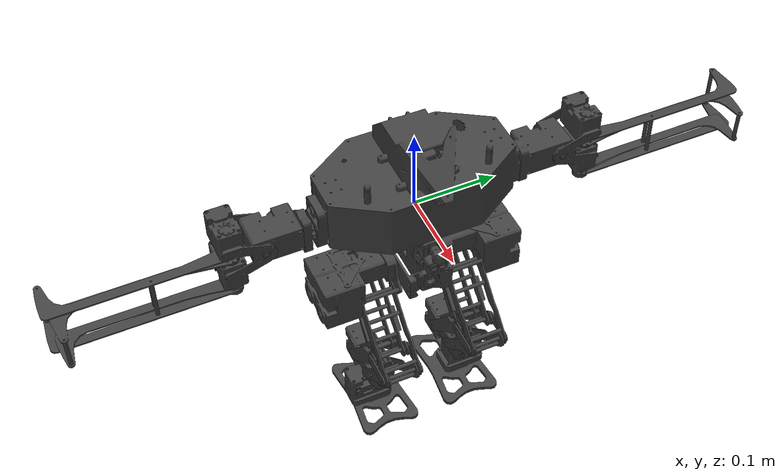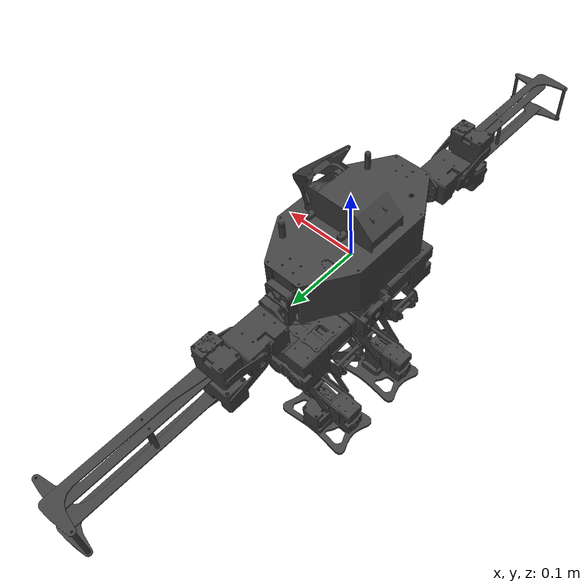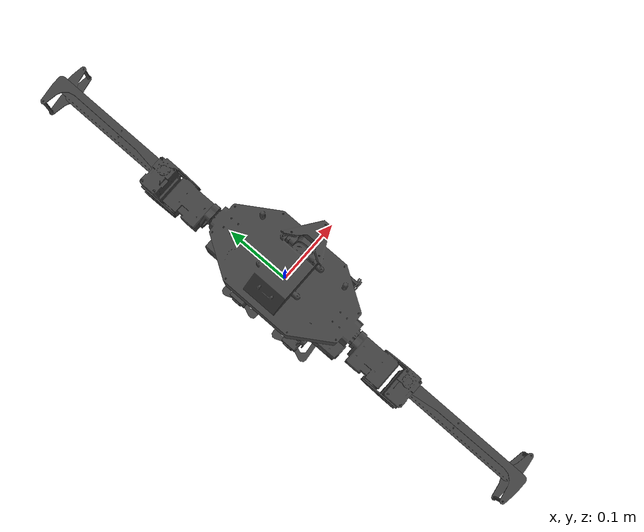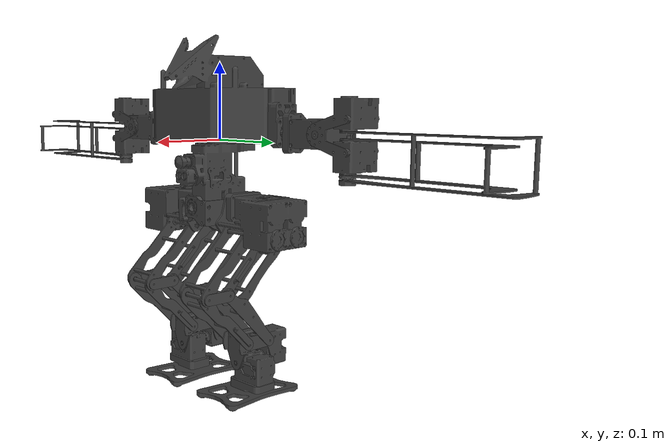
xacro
<?xml version="1.0"?>
<robot name="kuroko" xmlns:xacro="http://www.ros.org/wiki/xacro">

  <xacro:arg name="gazebo" default="false"/>
  <xacro:arg name="box_visual" default="false"/>
  <!-- Optional ros2_control controller parameters YAML for Gazebo Classic plugin -->
  <xacro:arg name="controller_yaml" default="$(find kuroko_description)/config/ros2_control/joint_trajectory_controller.yaml"/>
  <xacro:arg name="pid_yaml" default="$(find kuroko_description)/config/ros2_control/gazebo_pid_gains.yaml"/>

  <xacro:property name="XACRO_DIR" value="$(find kuroko_description)/xacro" />

  <xacro:unless value="$(arg gazebo)">
    <xacro:property name="MESH_DIR" value="package://kuroko_description/meshes" />
  </xacro:unless>
  <xacro:if value="$(arg gazebo)">
    <xacro:property name="MESH_DIR" value="$(find kuroko_description)/meshes" />
  </xacro:if>

  <xacro:include filename="${XACRO_DIR}/physics/materials.xacro"/>
  <xacro:include filename="${XACRO_DIR}/physics/box_physics.xacro"/>
  <xacro:include filename="${XACRO_DIR}/physics/gazebo_passive_joint.xacro"/>

  <xacro:include filename="${XACRO_DIR}/kuroko/parts/body.xacro"/>
  <xacro:include filename="${XACRO_DIR}/kuroko/gazebo/body.gazebo"/>

  <xacro:include filename="${XACRO_DIR}/kuroko/parts/arm_r.xacro"/>
  <xacro:include filename="${XACRO_DIR}/kuroko/gazebo/arm_r.gazebo"/>

  <xacro:include filename="${XACRO_DIR}/kuroko/parts/arm_l.xacro"/>
  <xacro:include filename="${XACRO_DIR}/kuroko/gazebo/arm_l.gazebo"/>

  <xacro:include filename="${XACRO_DIR}/kuroko/parts/leg_r.xacro"/>
  <xacro:include filename="${XACRO_DIR}/kuroko/gazebo/leg_r.gazebo"/>

  <xacro:include filename="${XACRO_DIR}/kuroko/parts/leg_l.xacro"/>
  <xacro:include filename="${XACRO_DIR}/kuroko/gazebo/leg_l.gazebo"/>

  <xacro:include filename="${XACRO_DIR}/sensors/range/tfluna.xacro"/>
  <xacro:include filename="${XACRO_DIR}/sensors/imu/imu_n100mini.xacro"/>
  <xacro:include filename="${XACRO_DIR}/sensors/imu/imu_n100mini_gazebo.xacro"/>
  <xacro:include filename="${XACRO_DIR}/sensors/camera/usb_camera.xacro"/>

  <!-- Gazebo Classic ros2_control helper -->
  <xacro:include filename="${XACRO_DIR}/kuroko/gazebo/kuroko_command_interface.gazebo"/>

  <!-- Main robot model macro -->
  <xacro:macro name="kuroko_model" params="gazebo box_visual">

    <link name="body_link"/>
    <joint name="root_joint" type="fixed">
      <parent link="body_link"/>
      <child link="waist_link"/>
      <origin xyz="0 0 0" rpy="0 0 0"/>
    </joint>

    <xacro:body_xacro box_visual="${box_visual}"/>
    <xacro:body_gazebo/>

    <xacro:arm_r_xacro box_visual="${box_visual}"/>
    <xacro:arm_r_gazebo/>

    <xacro:arm_l_xacro box_visual="${box_visual}"/>
    <xacro:arm_l_gazebo/>

    <xacro:leg_r_xacro gazebo="${gazebo}" box_visual="${box_visual}"/>
    <xacro:leg_r_gazebo/>

    <xacro:leg_l_xacro gazebo="${gazebo}" box_visual="${box_visual}"/>
    <xacro:leg_l_gazebo/>

    <xacro:imu_n100mini parent="waist_link" name="imu">
      <origin xyz="-0.04 0 -0.01" rpy="0 0 0"/>
    </xacro:imu_n100mini>
    <xacro:n100mini_gazebo name="imu" namespace="/kuroko/sensors/imu"/>

    <!-- gz sensor/plugins -->

    <!-- ros2_control block is always present so gazebo_ros2_control can parse robot_description.
         The Gazebo plugin itself is included only when gazebo:=true (spawned model). -->
    <xacro:kuroko_command_interface_position controller_yaml="$(arg controller_yaml)" pid_yaml="$(arg pid_yaml)"/>

  </xacro:macro>

  <!-- Instantiate -->
  <xacro:kuroko_model gazebo="$(arg gazebo)" box_visual="$(arg box_visual)"/>

</robot>

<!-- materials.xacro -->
<robot>
  <material name="black">
    <color rgba="0.0 0.0 0.0 1.0"/>
  </material>

  <material name="dark_gray">
    <color rgba="0.25 0.25 0.25 1.0"/>
  </material>

  <material name="gray">
    <color rgba="0.5 0.5 0.5 1.0"/>
  </material>

  <material name="light_gray">
    <color rgba="0.75 0.75 0.75 1.0"/>
  </material>

  <material name="white">
    <color rgba="1.0 1.0 1.0 1.0"/>
  </material>

  <material name="blue">
    <color rgba="0.0 0.0 0.8 1.0"/>
  </material>

  <material name="green">
    <color rgba="0.0 0.8 0.0 1.0"/>
  </material>

  <material name="orange">
    <color rgba="${255/255} ${108/255} ${10/255} 1.0"/>
  </material>

  <material name="brown">
    <color rgba="${222/255} ${207/255} ${195/255} 1.0"/>
  </material>

  <material name="red">
    <color rgba="0.8 0.0 0.0 1.0"/>
  </material>
</robot>

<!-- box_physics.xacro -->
<robot xmlns:xacro="http://www.ros.org/wiki/xacro">
  <xacro:macro name="box_inertial" params="xyz:='0 0 0' rpy:='0 0 0' size mass inertia_min:=0.0001">
    <xacro:property name="d" value="${float(size.split()[0])}"/>
    <xacro:property name="w" value="${float(size.split()[1])}"/>
    <xacro:property name="h" value="${float(size.split()[2])}"/>
    <xacro:property name="ixx" value="${mass * (w ** 2 + h ** 2) / 12}"/>
    <xacro:property name="iyy" value="${mass * (d ** 2 + h ** 2) / 12}"/>
    <xacro:property name="izz" value="${mass * (w ** 2 + d ** 2) / 12}"/>
    <xacro:if value="${int(inertia_min/ixx)}">
      <xacro:property name="ixx" value="${inertia_min}"/>
    </xacro:if>
    <xacro:if value="${int(inertia_min/iyy)}">
      <xacro:property name="iyy" value="${inertia_min}"/>
    </xacro:if>
    <xacro:if value="${int(inertia_min/izz)}">
      <xacro:property name="izz" value="${inertia_min}"/>
    </xacro:if>
    <inertial>
      <origin xyz="${xyz}" rpy="${rpy}"/>
      <mass value="${mass}"/>
      <inertia ixx="${ixx}"
        ixy="0.0" iyy="${iyy}"
        ixz="0.0" iyz="0.0" izz="${izz}"/>
    </inertial>
  </xacro:macro>
  <xacro:macro name="box_collision" params="xyz:='0 0 0' rpy:='0 0 0' size">
    <collision>
      <origin xyz="${xyz}" rpy="${rpy}"/>
      <geometry>
        <box size="${size}"/>
      </geometry>
    </collision>
  </xacro:macro>
  <xacro:macro name="box_visual" params="xyz:='0 0 0' rpy:='0 0 0' size material_name:='gray' color:='0.5 0.5 0.5 1'">
    <visual>
      <origin xyz="${xyz}" rpy="${rpy}"/>
      <geometry>
        <box size="${size}"/>
      </geometry>
      <material name="${material_name}">
        <color rgba="${color}"/>
      </material>
    </visual>
  </xacro:macro>
</robot>

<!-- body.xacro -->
<robot xmlns:xacro="http://www.ros.org/wiki/xacro">
  <xacro:macro name="body_xacro" params="box_visual:=false">
    <!-- waist -->
    <link name="waist_link">
      <xacro:unless value="$(arg box_visual)">
        <visual>
          <origin xyz="0 0 0" rpy="0 0 0"/>
          <geometry>
            <mesh filename="${MESH_DIR}/kuroko/stl/waist.stl"/>
          </geometry>
          <material name="dark_gray"/>
        </visual>
      </xacro:unless>
      <xacro:if value="$(arg box_visual)">
        <xacro:box_visual xyz="0.0084 0.0000 -0.0483" rpy="0 0 0" size="0.1247 0.0560 0.0965"/>
      </xacro:if>
      <xacro:box_inertial xyz="0.0084 0.0000 -0.0483" rpy="0 0 0" size="0.1247 0.0560 0.0965" mass="0.388"/>
      <xacro:box_collision xyz="0.0084 0.0000 -0.0483" rpy="0 0 0" size="0.1247 0.028 0.08"/>
    </link>
    <!-- Joint1 -->
    <joint name="chest" type="revolute">
      <parent link="waist_link"/>
      <child link="chest_link"/>
      <origin xyz="0 0 0" rpy="0 0 0"/>
      <axis xyz="0 0 1"/>
      <limit effort="3.1" lower="-3.14" upper="3.14" velocity="6.5"/>
      <dynamics damping="0.477" friction="0.0"/>
    </joint>
    <!-- chest -->
    <link name="chest_link">
      <xacro:unless value="$(arg box_visual)">
        <visual>
          <origin xyz="0 0 0" rpy="0 0 0"/>
          <geometry>
            <mesh filename="${MESH_DIR}/kuroko/stl/chest.stl"/>
          </geometry>
          <material name="dark_gray"/>
        </visual>
      </xacro:unless>
      <xacro:if value="$(arg box_visual)">
        <xacro:box_visual xyz="0.0120 0.0000 0.0635" rpy="0 0 0" size="0.1480 0.2560 0.1364"/>
      </xacro:if>
      <xacro:box_collision xyz="0.0120 0.0000 0.0665" rpy="0 0 0" size="0.1480 0.2560 0.1334"/>
      <xacro:box_inertial xyz="0.0120 0.0000 0.0635" rpy="0 0 0" size="0.1480 0.2560 0.1364" mass="0.806"/>
    </link>
  </xacro:macro>
</robot>

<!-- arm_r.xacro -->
<robot xmlns:xacro="http://www.ros.org/wiki/xacro">
  <xacro:macro name="arm_r_xacro" params="box_visual:=false">
    <!-- Link conencts from body. Shoulder first. -->
    <joint name="shoulder_r_pitch" type="revolute">
      <parent link="chest_link"/>
      <child link="shoulder_r_pitch_link"/>
      <origin xyz="0 -0.128 0.01275" rpy="0 0 0"/>
      <axis xyz="0 1 0"/>
      <limit effort="3.1" lower="-3.14" upper="3.14" velocity="6.5"/>
      <dynamics damping="0.477" friction="0.0"/>
    </joint>
    <link name="shoulder_r_pitch_link">
      <xacro:unless value="$(arg box_visual)">
        <visual>
          <origin xyz="0 0 0" rpy="0 0 0"/>
          <geometry>
            <mesh filename="${MESH_DIR}/kuroko/stl/shoulder_r_pitch.stl"/>
          </geometry>
          <material name="dark_gray"/>
        </visual>
      </xacro:unless>
      <xacro:if value="$(arg box_visual)">
        <xacro:box_visual xyz="-0.0096 -0.0340 0.0000" rpy="0 0 0" size="0.0513 0.0680 0.0475"/>
      </xacro:if>
      <xacro:box_inertial xyz="-0.0096 -0.0340 0.0000" rpy="0 0 0" size="0.0513 0.0680 0.0475" mass="0.165"/>
    </link>
    <joint name="shoulder_r_roll" type="revolute">
      <parent link="shoulder_r_pitch_link"/>
      <child link="shoulder_r_roll_link"/>
      <origin xyz="0 -0.05425 0" rpy="-1.5708 0 0"/>
      <axis xyz="1 0 0"/>
      <limit effort="8.9" lower="-3.14" upper="3.14" velocity="6.9"/>
      <dynamics damping="1.29" friction="0.0"/>
    </joint>
    <link name="shoulder_r_roll_link">
      <xacro:unless value="$(arg box_visual)">
        <visual>
          <origin xyz="0 0 0" rpy="0 0 0"/>
          <geometry>
            <mesh filename="${MESH_DIR}/kuroko/stl/shoulder_r_roll.stl"/>
          </geometry>
          <material name="dark_gray"/>
        </visual>
      </xacro:unless>
      <xacro:if value="$(arg box_visual)">
        <xacro:box_visual xyz="-0.0108 0.0000 -0.0186" rpy="0 0 0" size="0.0530 0.0860 0.0633"/>
      </xacro:if>
      <xacro:box_collision xyz="-0.0108 0.0000 -0.0186" rpy="0 0 0" size="0.0530 0.0860 0.0633"/>
      <xacro:box_inertial xyz="-0.0108 0.0000 -0.0186" rpy="0 0 0" size="0.0530 0.0860 0.0633" mass="0.183"/>
    </link>
    <joint name="elbow_r_front" type="revolute">
      <parent link="shoulder_r_roll_link"/>
      <child link="elbow_r_front_link"/>
      <origin xyz="0 0.023 -0.036" rpy="0 0 0"/>
      <axis xyz="0 1 0"/>
      <limit effort="3.1" lower="-2.6180" upper="2.6180" velocity="6.5"/>
      <dynamics damping="0.477" friction="0.0"/>
    </joint>
    <link name="elbow_r_front_link">
      <xacro:unless value="$(arg box_visual)">
        <visual>
          <origin xyz="0 0 0" rpy="0 0 0"/>
          <geometry>
            <mesh filename="${MESH_DIR}/kuroko/stl/elbow_r_front.stl"/>
          </geometry>
          <material name="dark_gray"/>
        </visual>
      </xacro:unless>
      <xacro:if value="$(arg box_visual)">
        <xacro:box_visual xyz="0.0043 0 -0.104" rpy="0 0 0" size="0.01085 0.058 0.208"/>
        <xacro:box_visual xyz="-0.0206 0 -0.201" rpy="0 0 0" size="0.039 0.058 0.014"/>
      </xacro:if>
      <xacro:box_inertial xyz="0.0043 0 -0.104" rpy="0 0 0" size="0.044 0.058 0.208" mass="0.032"/>
      <xacro:box_collision xyz="0.0043 0.001 -0.114" rpy="0 0 0" size="0.01085 0.05 0.108"/>
      <xacro:box_collision xyz="0.0043 0.029 -0.134" rpy="0 0 0" size="0.01085 0.006 0.148"/>
      <xacro:box_collision xyz="0.0043 -0.027 -0.134" rpy="0 0 0" size="0.01085 0.006 0.148"/>
      <xacro:box_collision xyz="-0.0206 0.029 -0.201" rpy="0 0 0" size="0.039 0.006 0.014"/>
      <xacro:box_collision xyz="-0.0206 -0.027 -0.201" rpy="0 0 0" size="0.039 0.006 0.014"/>
    </link>
    <joint name="elbow_r_rear" type="revolute">
      <parent link="shoulder_r_roll_link"/>
      <child link="elbow_r_rear_link"/>
      <origin xyz="0 0.024 -0.036" rpy="0 0 0"/>
      <axis xyz="0 1 0"/>
      <limit effort="3.1" lower="-2.6180" upper="2.6180" velocity="6.5"/>
      <dynamics damping="0.477" friction="0.0"/>
    </joint>
    <link name="elbow_r_rear_link">
      <xacro:unless value="$(arg box_visual)">
        <visual>
          <origin xyz="0 0 0" rpy="0 0 0"/>
          <geometry>
            <mesh filename="${MESH_DIR}/kuroko/stl/elbow_r_rear.stl"/>
          </geometry>
          <material name="dark_gray"/>
        </visual>
      </xacro:unless>
      <xacro:if value="$(arg box_visual)">
        <xacro:box_visual xyz="-0.0043 0 -0.1" rpy="0 0 0" size="0.01085 0.044 0.2"/>
        <xacro:box_visual xyz="0.0206 0 -0.193" rpy="0 0 0" size="0.039 0.044 0.014"/>
      </xacro:if>
      <xacro:box_inertial xyz="-0.0043 0 -0.1" rpy="0 0 0" size="0.044 0.044 0.2" mass="0.031"/>
      <xacro:box_collision xyz="-0.0043 0 -0.13" rpy="0 0 0" size="0.01085 0.044 0.14"/>
      <xacro:box_collision xyz="0.0206 0 -0.193" rpy="0 0 0" size="0.039 0.044 0.014"/>
    </link>
  </xacro:macro>
</robot>

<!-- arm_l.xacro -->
<robot xmlns:xacro="http://www.ros.org/wiki/xacro">
  <xacro:macro name="arm_l_xacro" params="box_visual:=false">
    <!-- Link conencts from body. Shoulder first. -->
    <joint name="shoulder_l_pitch" type="revolute">
      <parent link="chest_link"/>
      <child link="shoulder_l_pitch_link"/>
      <origin xyz="0 0.128 0.01275" rpy="0 0 0"/>
      <axis xyz="0 1 0"/>
      <limit effort="3.1" lower="-3.14" upper="3.14" velocity="6.5"/>
      <dynamics damping="0.477" friction="0.0"/>
    </joint>
    <link name="shoulder_l_pitch_link">
      <xacro:unless value="$(arg box_visual)">
        <visual>
          <origin xyz="0 0 0" rpy="0 0 0"/>
          <geometry>
            <mesh filename="${MESH_DIR}/kuroko/stl/shoulder_l_pitch.stl"/>
          </geometry>
          <material name="dark_gray"/>
        </visual>
      </xacro:unless>
      <xacro:if value="$(arg box_visual)">
        <xacro:box_visual xyz="-0.0096 0.0340 0.0000" rpy="0 0 0" size="0.0513 0.0680 0.0475"/>
      </xacro:if>
      <xacro:box_inertial xyz="-0.0096 0.0340 0.0000" rpy="0 0 0" size="0.0513 0.0680 0.0475" mass="0.165"/>
    </link>
    <joint name="shoulder_l_roll" type="revolute">
      <parent link="shoulder_l_pitch_link"/>
      <child link="shoulder_l_roll_link"/>
      <origin xyz="0 0.05425 0" rpy="1.5708 0 0"/>
      <axis xyz="1 0 0"/>
      <limit effort="8.9" lower="-3.14" upper="3.14" velocity="6.9"/>
      <dynamics damping="1.29" friction="0.0"/>
    </joint>
    <link name="shoulder_l_roll_link">
      <xacro:unless value="$(arg box_visual)">
        <visual>
          <origin xyz="0 0 0" rpy="0 0 0"/>
          <geometry>
            <mesh filename="${MESH_DIR}/kuroko/stl/shoulder_l_roll.stl"/>
          </geometry>
          <material name="dark_gray"/>
        </visual>
      </xacro:unless>
      <xacro:if value="$(arg box_visual)">
        <xacro:box_visual xyz="-0.0108 0.0000 -0.0186" rpy="0 0 0" size="0.0530 0.0860 0.0633"/>
      </xacro:if>
      <xacro:box_collision xyz="-0.0108 0.0000 -0.0186" rpy="0 0 0" size="0.0530 0.0860 0.0633"/>
      <xacro:box_inertial xyz="-0.0108 0.0000 -0.0186" rpy="0 0 0" size="0.0530 0.0860 0.0633" mass="0.183"/>
    </link>
    <joint name="elbow_l_front" type="revolute">
      <parent link="shoulder_l_roll_link"/>
      <child link="elbow_l_front_link"/>
      <origin xyz="0 -0.023 -0.036" rpy="0 0 0"/>
      <axis xyz="0 1 0"/>
      <limit effort="3.1" lower="-2.6180" upper="2.6180" velocity="6.5"/>
      <dynamics damping="0.477" friction="0.0"/>
    </joint>
    <link name="elbow_l_front_link">
      <xacro:unless value="$(arg box_visual)">
        <visual>
          <origin xyz="0 0 0" rpy="0 0 0"/>
          <geometry>
            <mesh filename="${MESH_DIR}/kuroko/stl/elbow_l_front.stl"/>
          </geometry>
          <material name="dark_gray"/>
        </visual>
      </xacro:unless>
      <xacro:if value="$(arg box_visual)">
        <xacro:box_visual xyz="0.0043 0 -0.104" rpy="0 0 0" size="0.01085 0.05 0.108"/>
        <xacro:box_visual xyz="-0.0206 0 -0.201" rpy="0 0 0" size="0.039 0.058 0.014"/>
      </xacro:if>
      <xacro:box_inertial xyz="0.0043 0 -0.104" rpy="0 0 0" size="0.044 0.058 0.208" mass="0.032"/>
      <xacro:box_collision xyz="0.0043 -0.001 -0.114" rpy="0 0 0" size="0.01085 0.05 0.108"/>
      <xacro:box_collision xyz="0.0043 0.027 -0.134" rpy="0 0 0" size="0.01085 0.006 0.148"/>
      <xacro:box_collision xyz="0.0043 -0.029 -0.134" rpy="0 0 0" size="0.01085 0.006 0.148"/>
      <xacro:box_collision xyz="-0.0206 0.027 -0.201" rpy="0 0 0" size="0.039 0.006 0.014"/>
      <xacro:box_collision xyz="-0.0206 -0.029 -0.201" rpy="0 0 0" size="0.039 0.006 0.014"/>
    </link>
    <joint name="elbow_l_rear" type="revolute">
      <parent link="shoulder_l_roll_link"/>
      <child link="elbow_l_rear_link"/>
      <origin xyz="0 -0.024 -0.036" rpy="0 0 0"/>
      <axis xyz="0 1 0"/>
      <limit effort="3.1" lower="-2.6180" upper="2.6180" velocity="6.5"/>
      <dynamics damping="0.477" friction="0.0"/>
    </joint>
    <link name="elbow_l_rear_link">
      <xacro:unless value="$(arg box_visual)">
        <visual>
          <origin xyz="0 0 0" rpy="0 0 0"/>
          <geometry>
            <mesh filename="${MESH_DIR}/kuroko/stl/elbow_l_rear.stl"/>
          </geometry>
          <material name="dark_gray"/>
        </visual>
      </xacro:unless>
      <xacro:if value="$(arg box_visual)">
        <xacro:box_visual xyz="-0.0043 0 -0.1" rpy="0 0 0" size="0.01085 0.044 0.2"/>
        <xacro:box_visual xyz="0.0206 0 -0.193" rpy="0 0 0" size="0.039 0.044 0.014"/>
      </xacro:if>
      <xacro:box_inertial xyz="-0.0043 0 -0.1" rpy="0 0 0" size="0.044 0.044 0.2" mass="0.031"/>
      <xacro:box_collision xyz="-0.0043 0 -0.13" rpy="0 0 0" size="0.01085 0.044 0.14"/>
      <xacro:box_collision xyz="0.0206 0 -0.193" rpy="0 0 0" size="0.039 0.044 0.014"/>
    </link>
  </xacro:macro>
</robot>

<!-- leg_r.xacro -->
<robot xmlns:xacro="http://www.ros.org/wiki/xacro">
  <xacro:macro name="leg_r_xacro" params="gazebo:=false box_visual:=false">
    <!-- Link conencts from body. Hip first. -->
    <joint name="hip_r_roll" type="revolute">
      <parent link="waist_link"/>
      <child link="hip_r_roll_link"/>
      <origin xyz="0 0 -0.08425" rpy="0 0 0"/>
      <axis xyz="1 0 0"/>
      <limit effort="3.1" lower="-0.5550" upper="1.8640" velocity="6.5"/>
      <dynamics damping="0.477" friction="0.0"/>
    </joint>
    <link name="hip_r_roll_link">
      <xacro:unless value="$(arg box_visual)">
        <visual>
          <origin xyz="0 0 0" rpy="0 0 0"/>
          <geometry>
            <mesh filename="${MESH_DIR}/kuroko/stl/hip_r_roll.stl"/>
          </geometry>
          <material name="dark_gray"/>
        </visual>
      </xacro:unless>
      <xacro:if value="$(arg box_visual)">
        <xacro:box_visual xyz="0.00125 -0.0065 -0.004125" rpy="0 0 0" size="0.092 0.041 0.03625"/>
      </xacro:if>
      <xacro:box_inertial xyz="0.00125 -0.0065 -0.004125" rpy="0 0 0" size="0.092 0.041 0.03625"
        mass="0.026"/>
    </link>
    <joint name="hip_r_pitch" type="revolute">
      <parent link="hip_r_roll_link"/>
      <child link="hip_r_pitch_link"/>
      <origin xyz="0 -0.027 0" rpy="0 0 0"/>
      <axis xyz="0 1 0"/>
      <limit effort="3.1" lower="-3.1" upper="3.1" velocity="6.5"/>
      <dynamics damping="0.477" friction="0.0"/>
    </joint>
    <link name="hip_r_pitch_link">
      <xacro:unless value="$(arg box_visual)">
        <visual>
          <origin xyz="0 0 0" rpy="0 0 0"/>
          <geometry>
            <mesh filename="${MESH_DIR}/kuroko/stl/hip_r_pitch.stl"/>
          </geometry>
          <material name="dark_gray"/>
        </visual>
      </xacro:unless>
      <xacro:if value="$(arg box_visual)">
        <xacro:box_visual xyz="-0.00175 -0.049 -0.015" rpy="0 0 0" size="0.067 0.098 0.0585"/>
      </xacro:if>
      <xacro:box_collision xyz="-0.00175 -0.049 -0.015" rpy="0 0 0" size="0.067 0.098 0.0585"/>
      <xacro:box_inertial xyz="-0.00175 -0.049 -0.015" rpy="0 0 0" size="0.067 0.098 0.0585"
        mass="0.478"/>
    </link>

    <joint name="shin_r_active" type="revolute">
      <parent link="hip_r_pitch_link"/>
      <child link="shin_r_active_link"/>
      <origin xyz="-0.0185 -0.02925 -0.0305" rpy="0 1.047197551 0"/>
      <axis xyz="0 1 0"/>
      <limit effort="8.9" lower="-1.8588" upper="0.4974" velocity="6.9"/>
      <dynamics damping="1.29" friction="0.0"/>
    </joint>
    <link name="shin_r_active_link">
      <xacro:unless value="$(arg box_visual)">
        <visual>
          <origin xyz="0 0 0" rpy="0 0 0"/>
          <geometry>
            <mesh filename="${MESH_DIR}/kuroko/stl/shin_r_active.stl"/>
          </geometry>
          <material name="dark_gray"/>
        </visual>
      </xacro:unless>
      <xacro:if value="$(arg box_visual)">
        <xacro:box_visual xyz="-0.004745 0 -0.015" rpy="0 0 0" size="0.02349 0.0445 0.044"/>
      </xacro:if>
      <xacro:box_inertial xyz="-0.004745 0 -0.015" rpy="0 0 0" size="0.02349 0.0445 0.044"
        mass="0.008"/>
    </link>

    <joint name="thigh_r_active" type="revolute">
      <parent link="hip_r_pitch_link"/>
      <child link="thigh_r_active_link"/>
      <origin xyz="0.015 -0.02925 -0.0305" rpy="0 -0.785398163 0"/>
      <axis xyz="0 1 0"/>
      <limit effort="8.9" lower="-0.4974" upper="1.8588" velocity="6.9"/>
      <dynamics damping="1.29" friction="0.0"/>
    </joint>
    <link name="thigh_r_active_link">
      <xacro:unless value="$(arg box_visual)">
        <visual>
          <origin xyz="0 0 0" rpy="0 0 0"/>
          <geometry>
            <mesh filename="${MESH_DIR}/kuroko/stl/thigh_r_active.stl"/>
          </geometry>
          <material name="dark_gray"/>
        </visual>
      </xacro:unless>
      <xacro:if value="$(arg box_visual)">
        <xacro:box_visual xyz="0 0 -0.05" rpy="0 0 0" size="0.014 0.0445 0.114"/>
      </xacro:if>
      <xacro:box_inertial xyz="0 0 -0.05" rpy="0 0 0" size="0.014 0.0445 0.114" mass="0.012"/>
    </link>
    <xacro:unless value="$(arg gazebo)">
      <joint name="shin_r_front_mimic" type="revolute">
        <parent link="thigh_r_active_link"/>
        <child link="shin_r_front_mimic_link"/>
        <origin xyz="0 0 -0.1" rpy="0 0.785398163 0"/>
        <axis xyz="0 1 0"/>
        <limit effort="0" lower="-1.8588" upper="0.4974" velocity="1000"/>
        <dynamics damping="0.0" friction="0.0"/>
        <mimic joint="thigh_r_active" multiplier="-1" offset="0"/>
      </joint>
      <link name="shin_r_front_mimic_link"/>
      <joint name="shin_r_front_passive" type="revolute">
        <parent link="shin_r_front_mimic_link"/>
        <child link="shin_r_front_passive_link"/>
        <origin xyz="0 0 0" rpy="0 0.785398163 0"/>
        <axis xyz="0 1 0"/>
        <limit effort="0" lower="-1.8588" upper="0.4974" velocity="1000"/>
        <dynamics damping="0.0" friction="0.0"/>
        <mimic joint="shin_r_active" multiplier="1" offset="0"/>
      </joint>
    </xacro:unless>
    <xacro:if value="$(arg gazebo)">
      <joint name="shin_r_front_passive" type="revolute">
        <parent link="thigh_r_active_link"/>
        <child link="shin_r_front_passive_link"/>
        <origin xyz="0 0 -0.1" rpy="0 1.570796327 0"/>
        <axis xyz="0 1 0"/>
        <limit effort="0" lower="-1.570796327" upper="0.9948" velocity="1000.0"/>
        <dynamics damping="0.0" friction="0.0"/>
      </joint>
    </xacro:if>
    <link name="shin_r_front_passive_link">
      <xacro:unless value="$(arg box_visual)">
        <visual>
          <origin xyz="0 0 0" rpy="0 0 0"/>
          <geometry>
            <mesh filename="${MESH_DIR}/kuroko/stl/shin_r_front_passive.stl"/>
          </geometry>
          <material name="dark_gray"/>
        </visual>
      </xacro:unless>
      <xacro:if value="$(arg box_visual)">
        <xacro:box_visual xyz="0 0 -0.05" rpy="0 0 0" size="0.014 0.0445 0.114"/>
      </xacro:if>
      <xacro:box_inertial xyz="0 0 -0.05" rpy="0 0 0" size="0.014 0.0385 0.114" mass="0.013"/>
    </link>

    <joint name="thigh_r_middle_passive" type="revolute">
      <parent link="hip_r_pitch_link"/>
      <child link="thigh_r_middle_passive_link"/>
      <origin xyz="-0.0185 -0.02925 -0.0305" rpy="0 -0.785398163 0"/>
      <axis xyz="0 1 0"/>
      <limit effort="0" lower="-0.4974" upper="1.8588" velocity="1000"/>
      <dynamics damping="0" friction="0"/>
      <mimic joint="thigh_r_active" multiplier="1" offset="0"/>
    </joint>
    <link name="thigh_r_middle_passive_link">
      <xacro:unless value="$(arg box_visual)">
        <visual>
          <origin xyz="0 0 0" rpy="0 0 0"/>
          <geometry>
            <mesh filename="${MESH_DIR}/kuroko/stl/thigh_r_middle_passive.stl"/>
          </geometry>
          <material name="dark_gray"/>
        </visual>
      </xacro:unless>
      <xacro:if value="$(arg box_visual)">
        <xacro:box_visual xyz="0 0 -0.05" rpy="0 0 0" size="0.014 0.0345 0.114"/>
      </xacro:if>
      <xacro:box_inertial xyz="0 0 -0.05" rpy="0 0 0" size="0.014 0.0345 0.114" mass="0.012"/>
    </link>
    <xacro:unless value="$(arg gazebo)">
      <joint name="shin_r_rear_mimic" type="revolute">
        <parent link="thigh_r_middle_passive_link"/>
        <child link="shin_r_rear_mimic_link"/>
        <origin xyz="0 0 -0.1" rpy="0 0.785398163 0"/>
        <axis xyz="0 1 0"/>
        <limit effort="0" lower="-1.8588" upper="0.4974" velocity="1000"/>
        <dynamics damping="0.0" friction="0.0"/>
        <mimic joint="thigh_r_active" multiplier="-1" offset="0"/>
      </joint>
      <link name="shin_r_rear_mimic_link"/>
      <joint name="shin_r_rear_passive" type="revolute">
        <parent link="shin_r_rear_mimic_link"/>
        <child link="shin_r_rear_passive_link"/>
        <origin xyz="0 0 0" rpy="0 0.785398163 0"/>
        <axis xyz="0 1 0"/>
        <limit effort="0" lower="-1.8588" upper="0.4974" velocity="1000"/>
        <dynamics damping="0.0" friction="0.0"/>
        <mimic joint="shin_r_active" multiplier="1" offset="0"/>
      </joint>
    </xacro:unless>
    <xacro:if value="$(arg gazebo)">
      <joint name="shin_r_rear_passive" type="revolute">
        <parent link="thigh_r_middle_passive_link"/>
        <child link="shin_r_rear_passive_link"/>
        <origin xyz="0 0 -0.1" rpy="0 1.570796327 0"/>
        <axis xyz="0 1 0"/>
        <limit effort="0" lower="-1.570796327" upper="0.9948" velocity="1000.0"/>
        <dynamics damping="0.0" friction="0.0"/>
      </joint>
    </xacro:if>
    <link name="shin_r_rear_passive_link">
      <xacro:unless value="$(arg box_visual)">
        <visual>
          <origin xyz="0 0 0" rpy="0 0 0"/>
          <geometry>
            <mesh filename="${MESH_DIR}/kuroko/stl/shin_r_rear_passive.stl"/>
          </geometry>
          <material name="dark_gray"/>
        </visual>
      </xacro:unless>
      <xacro:if value="$(arg box_visual)">
        <xacro:box_visual xyz="0 0 -0.05" rpy="0 0 0" size="0.014 0.0445 0.114"/>
      </xacro:if>
      <xacro:box_inertial xyz="0 0 -0.05" rpy="0 0 0" size="0.014 0.0445 0.114" mass="0.016"/>
    </link>

    <joint name="knee_r_rear_passive" type="revolute">
      <parent link="shin_r_rear_passive_link"/>
      <child link="knee_r_passive_link"/>
      <origin xyz="0 0 0" rpy="0 -0.785398164 0"/>
      <axis xyz="0 1 0"/>
      <limit effort="0" lower="-0.4974" upper="1.8588" velocity="1000.0"/>
      <dynamics damping="0.0" friction="0.0"/>
      <mimic joint="shin_r_active" multiplier="-1" offset="0"/>
    </joint>
    <link name="knee_r_passive_link">
      <xacro:unless value="$(arg box_visual)">
        <visual>
          <origin xyz="0.0335 0 0" rpy="0 0 0"/>
          <geometry>
            <mesh filename="${MESH_DIR}/kuroko/stl/knee_r_passive.stl"/>
          </geometry>
          <material name="dark_gray"/>
        </visual>
      </xacro:unless>
      <xacro:if value="$(arg box_visual)">
        <xacro:box_visual xyz="0.01675 0 0" rpy="0 0 0" size="0.0475 0.0505 0.014"/>
      </xacro:if>
      <xacro:box_collision xyz="0.01675 0 0" rpy="0 0 0" size="0.0475 0.0505 0.014"/>
      <xacro:box_inertial xyz="0.01675 0 0" rpy="0 0 0" size="0.0475 0.0505 0.014" mass="0.007"/>
    </link>
    <xacro:if value="$(arg gazebo)">
      <xacro:gazebo_passive_joint name="knee_r_front_passive_loop" xyz="0.0335 0 0"
        parent="knee_r_passive_link" child="thigh_r_active_link" axis="0 1 0" lower="-1.8588" upper="0.4974"/>
    </xacro:if>

    <xacro:unless value="$(arg gazebo)">
      <joint name="thigh_r_rear_mimic" type="revolute">
        <parent link="shin_r_rear_passive_link"/>
        <child link="thigh_r_rear_mimic_link"/>
        <origin xyz="-0.00776457 0 -0.0289778" rpy="0 -0.785398163 0"/>
        <axis xyz="0 1 0"/>
        <limit effort="0" lower="-0.4974" upper="1.8588" velocity="1000"/>
        <dynamics damping="0.0" friction="0.0"/>
        <mimic joint="thigh_r_active" multiplier="1" offset="0"/>
      </joint>
      <link name="thigh_r_rear_mimic_link"/>
      <joint name="thigh_r_rear_passive" type="revolute">
        <parent link="thigh_r_rear_mimic_link"/>
        <child link="thigh_r_rear_passive_link"/>
        <origin xyz="0 0 0" rpy="0 -0.785398163 0"/>
        <axis xyz="0 1 0"/>
        <limit effort="0" lower="-0.4974" upper="1.8588" velocity="1000"/>
        <dynamics damping="0.0" friction="0.0"/>
        <mimic joint="shin_r_active" multiplier="-1" offset="0"/>
      </joint>
    </xacro:unless>
    <xacro:if value="$(arg gazebo)">
      <joint name="thigh_r_rear_passive" type="revolute">
        <parent link="shin_r_rear_passive_link"/>
        <child link="thigh_r_rear_passive_link"/>
        <origin xyz="-0.00776457 0 -0.0289778" rpy="0 -1.570796327 0"/>
        <axis xyz="0 1 0"/>
        <limit effort="0" lower="-0.9948" upper="1.570796327" velocity="1000.0"/>
        <dynamics damping="0.0" friction="0.0"/>
      </joint>
    </xacro:if>
    <link name="thigh_r_rear_passive_link">
      <xacro:unless value="$(arg box_visual)">
        <visual>
          <origin xyz="0 0 0.1" rpy="0 0 0"/>
          <geometry>
            <mesh filename="${MESH_DIR}/kuroko/stl/thigh_r_rear_passive.stl"/>
          </geometry>
          <material name="dark_gray"/>
        </visual>
      </xacro:unless>
      <xacro:if value="$(arg box_visual)">
        <xacro:box_visual xyz="0 0 0.05" rpy="0 0 0" size="0.014 0.0285 0.114"/>
      </xacro:if>
      <xacro:box_inertial xyz="0 0 0.05" rpy="0 0 0" size="0.014 0.0285 0.114" mass="0.011"/>
    </link>
    <xacro:if value="$(arg gazebo)">
      <xacro:gazebo_passive_joint name="thigh_r_rear_passive_loop" xyz="0 0 0.1" rpy="0 1.832597551 0"
        parent="thigh_r_rear_passive_link" child="shin_r_active_link" axis="0 1 0"/>
    </xacro:if>

    <joint name="ankle_r_rear_passive" type="revolute">
      <parent link="shin_r_rear_passive_link"/>
      <child link="ankle_r_rear_passive_link"/>
      <origin xyz="0 0 -0.1" rpy="0 -0.785398163 0"/>
      <axis xyz="0 1 0"/>
      <limit effort="0" lower="-0.4974" upper="1.8588" velocity="1000.0"/>
      <dynamics damping="0.0" friction="0.0"/>
      <mimic joint="shin_r_active" multiplier="-1" offset="0"/>
    </joint>
    <link name="ankle_r_rear_passive_link">
      <xacro:unless value="$(arg box_visual)">
        <visual>
          <origin xyz="0.0335 0 0" rpy="0 0 0"/>
          <geometry>
            <mesh filename="${MESH_DIR}/kuroko/stl/ankle_r_pitch_passive.stl"/>
          </geometry>
          <material name="dark_gray"/>
        </visual>
      </xacro:unless>
      <xacro:if value="$(arg box_visual)">
        <xacro:box_visual xyz="0.005 0 -0.013" rpy="0 0 0" size="0.0855 0.0325 0.0465"/>
      </xacro:if>
      <xacro:box_collision xyz="-0.021 0 -0.013" rpy="0 0 0" size="0.0335 0.0325 0.0465"/>
      <xacro:box_inertial xyz="0.005 0 -0.013" rpy="0 0 0" size="0.0855 0.0325 0.0465"
        mass="0.104"/>
    </link>
    <xacro:if value="$(arg gazebo)">
      <xacro:gazebo_passive_joint name="ankle_r_front_passive_loop" xyz="0.0335 0 0" rpy="0 -0.785398163 0"
        parent="ankle_r_rear_passive_link" child="shin_r_front_passive_link" axis="0 1 0"/>
    </xacro:if>

    <joint name="ankle_r_roll" type="revolute">
      <parent link="ankle_r_rear_passive_link"/>
      <child link="ankle_r_roll_link"/>
      <origin xyz="0.0185 0 -0.027" rpy="0 0 0"/>
      <axis xyz="1 0 0"/>
      <limit effort="3.1" lower="-0.3704" upper="1.5708" velocity="6.5"/>
      <dynamics damping="0.477" friction="0.0"/>
    </joint>
    <link name="ankle_r_roll_link">
      <xacro:unless value="$(arg box_visual)">
        <visual>
          <origin xyz="0 0 0" rpy="0 0 0"/>
          <geometry>
            <mesh filename="${MESH_DIR}/kuroko/stl/ankle_r_roll.stl"/>
          </geometry>
          <material name="dark_gray"/>
        </visual>
      </xacro:unless>
      <xacro:if value="$(arg box_visual)">
        <xacro:box_visual xyz="0 -0.009375 -0.01175" rpy="0 0 0" size="0.0365 0.05375 0.043"/>
      </xacro:if>
      <xacro:box_collision xyz="0 -0.009375 -0.00975" rpy="0 0 0" size="0.0365 0.05375 0.039"/>
      <xacro:box_inertial xyz="0 -0.009375 -0.01175" rpy="0 0 0" size="0.0365 0.05375 0.043"
        mass="0.136"/>
    </link>
    <joint name="ankle_r_yaw" type="revolute">
      <parent link="ankle_r_roll_link"/>
      <child link="ankle_r_yaw_link"/>
      <origin xyz="0 0 -0.03825" rpy="0 0 0"/>
      <axis xyz="0 0 1"/>
      <limit effort="3.1" lower="-3.1" upper="3.1" velocity="6.5"/>
      <dynamics damping="0.477" friction="0.0"/>
    </joint>
    <link name="ankle_r_yaw_link">
      <xacro:unless value="$(arg box_visual)">
        <visual>
          <origin xyz="0 0 0" rpy="0 0 0"/>
          <geometry>
            <mesh filename="${MESH_DIR}/kuroko/stl/ankle_r_yaw.stl"/>
          </geometry>
          <material name="dark_gray"/>
        </visual>
      </xacro:unless>
      <xacro:if value="$(arg box_visual)">
        <xacro:box_visual xyz="0 0 -0.004" rpy="0 0 0" size="0.12 0.075 0.008"/>
      </xacro:if>
      <xacro:box_inertial xyz="0 0 -0.004" rpy="0 0 0" size="0.12 0.075 0.008" mass="0.043"/>
      <xacro:box_collision xyz="0 0 0.004" rpy="0 0 0" size="0.12 0.075 0.008"/>
      <collision>
        <origin xyz="0.052 0.0295 0" rpy="0 0 0" />
        <geometry>
          <sphere radius="0.008" />
        </geometry>
        <material name="gray" />
      </collision>
      <collision>
        <origin xyz="-0.052 0.0295 0" rpy="0 0 0" />
        <geometry>
          <sphere radius="0.008" />
        </geometry>
        <material name="gray" />
      </collision>
      <collision>
        <origin xyz="-0.052 -0.0295 0" rpy="0 0 0" />
        <geometry>
          <sphere radius="0.008" />
        </geometry>
        <material name="gray" />
      </collision>
      <collision>
        <origin xyz="0.052 -0.0295 0" rpy="0 0 0" />
        <geometry>
          <sphere radius="0.008" />
        </geometry>
        <material name="gray" />
      </collision>
    </link>

  </xacro:macro>
</robot>

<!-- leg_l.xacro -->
<robot xmlns:xacro="http://www.ros.org/wiki/xacro">
  <xacro:macro name="leg_l_xacro" params="gazebo:=false box_visual:=false">
    <!-- Link conencts from body. Hip first. -->
    <joint name="hip_l_roll" type="revolute">
      <parent link="waist_link"/>
      <child link="hip_l_roll_link"/>
      <origin xyz="0 0 -0.08425" rpy="0 0 0"/>
      <axis xyz="1 0 0"/>
      <limit effort="3.1" lower="-1.8640" upper="0.5550" velocity="6.5"/>
      <dynamics damping="0.477" friction="0.0"/>
    </joint>
    <link name="hip_l_roll_link">
      <xacro:unless value="$(arg box_visual)">
        <visual>
          <origin xyz="0 0 0" rpy="0 0 0"/>
          <geometry>
            <mesh filename="${MESH_DIR}/kuroko/stl/hip_l_roll.stl"/>
          </geometry>
          <material name="dark_gray"/>
        </visual>
      </xacro:unless>
      <xacro:if value="$(arg box_visual)">
        <xacro:box_visual xyz="0.00125 0.0065 -0.004125" rpy="0 0 0" size="0.092 0.041 0.03625"/>
      </xacro:if>
      <xacro:box_inertial xyz="0.00125 0.0065 -0.004125" rpy="0 0 0" size="0.092 0.041 0.03625"
        mass="0.026"/>
    </link>
    <joint name="hip_l_pitch" type="revolute">
      <parent link="hip_l_roll_link"/>
      <child link="hip_l_pitch_link"/>
      <origin xyz="0 0.027 0" rpy="0 0 0"/>
      <axis xyz="0 1 0"/>
      <limit effort="3.1" lower="-3.14" upper="3.14" velocity="6.5"/>
      <dynamics damping="0.477" friction="0.0"/>
    </joint>
    <link name="hip_l_pitch_link">
      <xacro:unless value="$(arg box_visual)">
        <visual>
          <origin xyz="0 0 0" rpy="0 0 0"/>
          <geometry>
            <mesh filename="${MESH_DIR}/kuroko/stl/hip_l_pitch.stl"/>
          </geometry>
          <material name="dark_gray"/>
        </visual>
      </xacro:unless>
      <xacro:if value="$(arg box_visual)">
        <xacro:box_visual xyz="-0.00175 0.049 -0.015" rpy="0 0 0" size="0.067 0.098 0.0585"/>
      </xacro:if>
      <xacro:box_collision xyz="-0.00175 0.049 -0.015" rpy="0 0 0" size="0.067 0.098 0.0585"/>
      <xacro:box_inertial xyz="-0.00175 0.049 -0.015" rpy="0 0 0" size="0.067 0.098 0.0585"
        mass="0.478"/>
    </link>

    <joint name="shin_l_active" type="revolute">
      <parent link="hip_l_pitch_link"/>
      <child link="shin_l_active_link"/>
      <origin xyz="-0.0185 0.02925 -0.0305" rpy="0 1.047197551 0"/>
      <axis xyz="0 1 0"/>
      <limit effort="8.9" lower="-1.8588" upper="0.4974" velocity="6.9"/>
      <dynamics damping="1.29" friction="0.0"/>
    </joint>
    <link name="shin_l_active_link">
      <xacro:unless value="$(arg box_visual)">
        <visual>
          <origin xyz="0 0 0" rpy="0 0 0"/>
          <geometry>
            <mesh filename="${MESH_DIR}/kuroko/stl/shin_l_active.stl"/>
          </geometry>
          <material name="dark_gray"/>
        </visual>
      </xacro:unless>
      <xacro:if value="$(arg box_visual)">
        <xacro:box_visual xyz="-0.004745 0 -0.015" rpy="0 0 0" size="0.02349 0.0445 0.044"/>
      </xacro:if>
      <xacro:box_inertial xyz="-0.004745 0 -0.015" rpy="0 0 0" size="0.02349 0.0445 0.044"
        mass="0.008"/>
    </link>

    <joint name="thigh_l_active" type="revolute">
      <parent link="hip_l_pitch_link"/>
      <child link="thigh_l_active_link"/>
      <origin xyz="0.015 0.02925 -0.0305" rpy="0 -0.785398163 0"/>
      <axis xyz="0 1 0"/>
      <limit effort="8.9" lower="-0.4974" upper="1.8588" velocity="6.9"/>
      <dynamics damping="1.29" friction="0.0"/>
    </joint>
    <link name="thigh_l_active_link">
      <xacro:unless value="$(arg box_visual)">
        <visual>
          <origin xyz="0 0 0" rpy="0 0 0"/>
          <geometry>
            <mesh filename="${MESH_DIR}/kuroko/stl/thigh_l_active.stl"/>
          </geometry>
          <material name="dark_gray"/>
        </visual>
      </xacro:unless>
      <xacro:if value="$(arg box_visual)">
        <xacro:box_visual xyz="0 0 -0.05" rpy="0 0 0" size="0.014 0.0445 0.114"/>
      </xacro:if>
      <xacro:box_inertial xyz="0 0 -0.05" rpy="0 0 0" size="0.014 0.0445 0.114" mass="0.012"/>
    </link>
    <xacro:unless value="$(arg gazebo)">
      <joint name="shin_l_front_mimic" type="revolute">
        <parent link="thigh_l_active_link"/>
        <child link="shin_l_front_mimic_link"/>
        <origin xyz="0 0 -0.1" rpy="0 0.785398163 0"/>
        <axis xyz="0 1 0"/>
        <limit effort="0" lower="-1.8588" upper="0.4974" velocity="1000"/>
        <dynamics damping="0.0" friction="0.0"/>
        <mimic joint="thigh_l_active" multiplier="-1" offset="0"/>
      </joint>
      <link name="shin_l_front_mimic_link"/>
      <joint name="shin_l_front_passive" type="revolute">
        <parent link="shin_l_front_mimic_link"/>
        <child link="shin_l_front_passive_link"/>
        <origin xyz="0 0 0" rpy="0 0.785398163 0"/>
        <axis xyz="0 1 0"/>
        <limit effort="0" lower="-1.8588" upper="0.4974" velocity="1000"/>
        <dynamics damping="0.0" friction="0.0"/>
        <mimic joint="shin_l_active" multiplier="1" offset="0"/>
      </joint>
    </xacro:unless>
    <xacro:if value="$(arg gazebo)">
      <joint name="shin_l_front_passive" type="revolute">
        <parent link="thigh_l_active_link"/>
        <child link="shin_l_front_passive_link"/>
        <origin xyz="0 0 -0.1" rpy="0 1.570796327 0"/>
        <axis xyz="0 1 0"/>
        <limit effort="0" lower="-1.570796327" upper="0.9948" velocity="1000.0"/>
        <dynamics damping="0.0" friction="0.0"/>
      </joint>
    </xacro:if>
    <link name="shin_l_front_passive_link">
      <xacro:unless value="$(arg box_visual)">
        <visual>
          <origin xyz="0 0 0" rpy="0 0 0"/>
          <geometry>
            <mesh filename="${MESH_DIR}/kuroko/stl/shin_r_front_passive.stl"/>
          </geometry>
          <material name="dark_gray"/>
        </visual>
      </xacro:unless>
      <xacro:if value="$(arg box_visual)">
        <xacro:box_visual xyz="0 0 -0.05" rpy="0 0 0" size="0.014 0.0385 0.114"/>
      </xacro:if>
      <xacro:box_inertial xyz="0 0 -0.05" rpy="0 0 0" size="0.014 0.0385 0.114" mass="0.013"/>
    </link>

    <joint name="thigh_l_middle_passive" type="revolute">
      <parent link="hip_l_pitch_link"/>
      <child link="thigh_l_middle_passive_link"/>
      <origin xyz="-0.0185 0.02925 -0.0305" rpy="0 -0.785398163 0"/>
      <axis xyz="0 1 0"/>
      <limit effort="0" lower="-0.4974" upper="1.8588" velocity="1000"/>
      <dynamics damping="0" friction="0"/>
      <mimic joint="thigh_l_active" multiplier="1" offset="0"/>
    </joint>
    <link name="thigh_l_middle_passive_link">
      <xacro:unless value="$(arg box_visual)">
        <visual>
          <origin xyz="0 0 0" rpy="0 0 0"/>
          <geometry>
            <mesh filename="${MESH_DIR}/kuroko/stl/thigh_r_middle_passive.stl"/>
          </geometry>
          <material name="dark_gray"/>
        </visual>
      </xacro:unless>
      <xacro:if value="$(arg box_visual)">
        <xacro:box_visual xyz="0 0 -0.05" rpy="0 0 0" size="0.014 0.0345 0.114"/>
      </xacro:if>
      <xacro:box_inertial xyz="0 0 -0.05" rpy="0 0 0" size="0.014 0.0345 0.114" mass="0.012"/>
    </link>
    <xacro:unless value="$(arg gazebo)">
      <joint name="shin_l_rear_mimic" type="revolute">
        <parent link="thigh_l_middle_passive_link"/>
        <child link="shin_l_rear_mimic_link"/>
        <origin xyz="0 0 -0.1" rpy="0 0.785398163 0"/>
        <axis xyz="0 1 0"/>
        <limit effort="0" lower="-1.8588" upper="0.4974" velocity="1000"/>
        <dynamics damping="0.0" friction="0.0"/>
        <mimic joint="thigh_l_active" multiplier="-1" offset="0"/>
      </joint>
      <link name="shin_l_rear_mimic_link"/>
      <joint name="shin_l_rear_passive" type="revolute">
        <parent link="shin_l_rear_mimic_link"/>
        <child link="shin_l_rear_passive_link"/>
        <origin xyz="0 0 0" rpy="0 0.785398163 0"/>
        <axis xyz="0 1 0"/>
        <limit effort="0" lower="-1.8588" upper="0.4974" velocity="1000"/>
        <dynamics damping="0.0" friction="0.0"/>
        <mimic joint="shin_l_active" multiplier="1" offset="0"/>
      </joint>
    </xacro:unless>
    <xacro:if value="$(arg gazebo)">
      <joint name="shin_l_rear_passive" type="revolute">
        <parent link="thigh_l_middle_passive_link"/>
        <child link="shin_l_rear_passive_link"/>
        <origin xyz="0 0 -0.1" rpy="0 1.570796327 0"/>
        <axis xyz="0 1 0"/>
        <limit effort="0" lower="-1.570796327" upper="0.9948" velocity="1000.0"/>
        <dynamics damping="0.0" friction="0.0"/>
      </joint>
    </xacro:if>
    <link name="shin_l_rear_passive_link">
      <xacro:unless value="$(arg box_visual)">
        <visual>
          <origin xyz="0 0 0" rpy="0 0 0"/>
          <geometry>
            <mesh filename="${MESH_DIR}/kuroko/stl/shin_r_rear_passive.stl"/>
          </geometry>
          <material name="dark_gray"/>
        </visual>
      </xacro:unless>
      <xacro:if value="$(arg box_visual)">
        <xacro:box_visual xyz="0 0 -0.05" rpy="0 0 0" size="0.014 0.0445 0.114"/>
      </xacro:if>
      <xacro:box_inertial xyz="0 0 -0.05" rpy="0 0 0" size="0.014 0.0445 0.114" mass="0.016"/>
    </link>

    <joint name="knee_l_rear_passive" type="revolute">
      <parent link="shin_l_rear_passive_link"/>
      <child link="knee_l_passive_link"/>
      <origin xyz="0 0 0" rpy="0 -0.785398164 0"/>
      <axis xyz="0 1 0"/>
      <limit effort="0" lower="-0.4974" upper="1.8588" velocity="1000.0"/>
      <dynamics damping="0.0" friction="0.0"/>
      <mimic joint="shin_l_active" multiplier="-1" offset="0"/>
    </joint>
    <link name="knee_l_passive_link">
      <xacro:unless value="$(arg box_visual)">
        <visual>
          <origin xyz="0.0335 0 0" rpy="0 0 0"/>
          <geometry>
            <mesh filename="${MESH_DIR}/kuroko/stl/knee_r_passive.stl"/>
          </geometry>
          <material name="dark_gray"/>
        </visual>
      </xacro:unless>
      <xacro:if value="$(arg box_visual)">
        <xacro:box_visual xyz="0.01675 0 0" rpy="0 0 0" size="0.0475 0.0505 0.014"/>
      </xacro:if>
      <xacro:box_collision xyz="0.01675 0 0" rpy="0 0 0" size="0.0475 0.0505 0.014"/>
      <xacro:box_inertial xyz="0.01675 0 0" rpy="0 0 0" size="0.0475 0.0505 0.014" mass="0.007"/>
    </link>
    <xacro:if value="$(arg gazebo)">
      <xacro:gazebo_passive_joint name="knee_l_front_passive_loop" xyz="0.0335 0 0"
        parent="knee_l_passive_link" child="thigh_l_active_link" axis="0 1 0" lower="-1.8588" upper="0.4974"/>
    </xacro:if>

    <xacro:unless value="$(arg gazebo)">
      <joint name="thigh_l_rear_mimic" type="revolute">
        <parent link="shin_l_rear_passive_link"/>
        <child link="thigh_l_rear_mimic_link"/>
        <origin xyz="-0.00776457 0 -0.0289778" rpy="0 -0.785398163 0"/>
        <axis xyz="0 1 0"/>
        <limit effort="0" lower="-0.4974" upper="1.8588" velocity="1000"/>
        <dynamics damping="0.0" friction="0.0"/>
        <mimic joint="thigh_l_active" multiplier="1" offset="0"/>
      </joint>
      <link name="thigh_l_rear_mimic_link"/>
      <joint name="thigh_l_rear_passive" type="revolute">
        <parent link="thigh_l_rear_mimic_link"/>
        <child link="thigh_l_rear_passive_link"/>
        <origin xyz="0 0 0" rpy="0 -0.785398163 0"/>
        <axis xyz="0 1 0"/>
        <limit effort="0" lower="-0.4974" upper="1.8588" velocity="1000"/>
        <dynamics damping="0.0" friction="0.0"/>
        <mimic joint="shin_l_active" multiplier="-1" offset="0"/>
      </joint>
    </xacro:unless>
    <xacro:if value="$(arg gazebo)">
      <joint name="thigh_l_rear_passive" type="revolute">
        <parent link="shin_l_rear_passive_link"/>
        <child link="thigh_l_rear_passive_link"/>
        <origin xyz="-0.00776457 0 -0.0289778" rpy="0 -1.570796327 0"/>
        <axis xyz="0 1 0"/>
        <limit effort="0" lower="-0.9948" upper="1.570796327" velocity="1000.0"/>
        <dynamics damping="0.0" friction="0.0"/>
      </joint>
    </xacro:if>
    <link name="thigh_l_rear_passive_link">
      <xacro:unless value="$(arg box_visual)">
        <visual>
          <origin xyz="0 0 0.1" rpy="0 0 0"/>
          <geometry>
            <mesh filename="${MESH_DIR}/kuroko/stl/thigh_r_rear_passive.stl"/>
          </geometry>
          <material name="dark_gray"/>
        </visual>
      </xacro:unless>
      <xacro:if value="$(arg box_visual)">
        <xacro:box_visual xyz="0 0 0.05" rpy="0 0 0" size="0.014 0.0285 0.114"/>
      </xacro:if>
      <xacro:box_inertial xyz="0 0 0.05" rpy="0 0 0" size="0.014 0.0285 0.114" mass="0.011"/>
    </link>
    <xacro:if value="$(arg gazebo)">
      <xacro:gazebo_passive_joint name="thigh_l_rear_passive_loop" xyz="0 0 0.1" rpy="0 1.832597551 0"
        parent="thigh_l_rear_passive_link" child="shin_l_active_link" axis="0 1 0"/>
    </xacro:if>

    <joint name="ankle_l_rear_passive" type="revolute">
      <parent link="shin_l_rear_passive_link"/>
      <child link="ankle_l_rear_passive_link"/>
      <origin xyz="0 0 -0.1" rpy="0 -0.785398163 0"/>
      <axis xyz="0 1 0"/>
      <limit effort="0" lower="-0.4974" upper="1.8588" velocity="1000.0"/>
      <dynamics damping="0.0" friction="0.0"/>
      <mimic joint="shin_l_active" multiplier="-1" offset="0"/>
    </joint>
    <link name="ankle_l_rear_passive_link">
      <xacro:unless value="$(arg box_visual)">
        <visual>
          <origin xyz="0.0335 0 0" rpy="0 0 0"/>
          <geometry>
            <mesh filename="${MESH_DIR}/kuroko/stl/ankle_r_pitch_passive.stl"/>
          </geometry>
          <material name="dark_gray"/>
        </visual>
      </xacro:unless>
      <xacro:if value="$(arg box_visual)">
        <xacro:box_visual xyz="0.005 0 -0.013" rpy="0 0 0" size="0.0855 0.0325 0.0465"/>
      </xacro:if>
      <xacro:box_collision xyz="-0.021 0 -0.013" rpy="0 0 0" size="0.0335 0.0325 0.0465"/>
      <xacro:box_inertial xyz="0.005 0 -0.013" rpy="0 0 0" size="0.0855 0.0325 0.0465" mass="0.104"/>
    </link>
    <xacro:if value="$(arg gazebo)">
      <xacro:gazebo_passive_joint name="ankle_l_front_passive_loop" xyz="0.0335 0 0" rpy="0 -0.785398163 0"
        parent="ankle_l_rear_passive_link" child="shin_l_front_passive_link" axis="0 1 0"/>
    </xacro:if>

    <joint name="ankle_l_roll" type="revolute">
      <parent link="ankle_l_rear_passive_link"/>
      <child link="ankle_l_roll_link"/>
      <origin xyz="0.0185 0 -0.027" rpy="0 0 0"/>
      <axis xyz="1 0 0"/>
      <limit effort="3.1" lower="-1.5708" upper="0.3704" velocity="6.5"/>
      <dynamics damping="0.477" friction="0.0"/>
    </joint>
    <link name="ankle_l_roll_link">
      <xacro:unless value="$(arg box_visual)">
        <visual>
          <origin xyz="0 0 0" rpy="0 0 0"/>
          <geometry>
            <mesh filename="${MESH_DIR}/kuroko/stl/ankle_l_roll.stl"/>
          </geometry>
          <material name="dark_gray"/>
        </visual>
      </xacro:unless>
      <xacro:if value="$(arg box_visual)">
        <xacro:box_visual xyz="0 0.009375 -0.01175" rpy="0 0 0" size="0.0365 0.05375 0.043"/>
      </xacro:if>
      <xacro:box_collision xyz="0 0.009375 -0.00975" rpy="0 0 0" size="0.0365 0.05375 0.039"/>
      <xacro:box_inertial xyz="0 0.009375 -0.01175" rpy="0 0 0" size="0.0365 0.05375 0.043"
        mass="0.136"/>
    </link>
    <joint name="ankle_l_yaw" type="revolute">
      <parent link="ankle_l_roll_link"/>
      <child link="ankle_l_yaw_link"/>
      <origin xyz="0 0 -0.03825" rpy="0 0 0"/>
      <axis xyz="0 0 1"/>
      <limit effort="3.1" lower="-3.1416" upper="3.1416" velocity="6.5"/>
      <dynamics damping="0.477" friction="0.0"/>
    </joint>
    <link name="ankle_l_yaw_link">
      <xacro:unless value="$(arg box_visual)">
        <visual>
          <origin xyz="0 0 0" rpy="0 0 0"/>
          <geometry>
            <mesh filename="${MESH_DIR}/kuroko/stl/ankle_r_yaw.stl"/>
          </geometry>
          <material name="dark_gray"/>
        </visual>
      </xacro:unless>
      <xacro:if value="$(arg box_visual)">
        <xacro:box_visual xyz="0 0 -0.004" rpy="0 0 0" size="0.12 0.075 0.008"/>
      </xacro:if>
      <xacro:box_inertial xyz="0 0 -0.004" rpy="0 0 0" size="0.12 0.075 0.008" mass="0.043"/>
      <xacro:box_collision xyz="0 0 0.004" rpy="0 0 0" size="0.12 0.075 0.008"/>
      <collision>
        <origin xyz="0.052 0.0295 0" rpy="0 0 0" />
        <geometry>
          <sphere radius="0.008" />
        </geometry>
        <material name="gray" />
      </collision>
      <collision>
        <origin xyz="-0.052 0.0295 0" rpy="0 0 0" />
        <geometry>
          <sphere radius="0.008" />
        </geometry>
        <material name="gray" />
      </collision>
      <collision>
        <origin xyz="-0.052 -0.0295 0" rpy="0 0 0" />
        <geometry>
          <sphere radius="0.008" />
        </geometry>
        <material name="gray" />
      </collision>
      <collision>
        <origin xyz="0.052 -0.0295 0" rpy="0 0 0" />
        <geometry>
          <sphere radius="0.008" />
        </geometry>
        <material name="gray" />
      </collision>
    </link>

  </xacro:macro>
</robot>

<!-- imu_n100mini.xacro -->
<robot xmlns:xacro="http://www.ros.org/wiki/xacro">
  <xacro:macro name="imu_n100mini" params="name parent:='base_link' *origin">
    <xacro:property name="depth" value="0.01"/>
    <xacro:property name="width" value="0.01"/>
    <xacro:property name="height" value="0.01"/>
    <joint name="${name}_joint" type="fixed">
      <parent link="${parent}"/>
      <child link="${name}_link"/>
      <xacro:insert_block name="origin"/>
    </joint>
    <link name="${name}_link">
      <visual>
        <origin xyz="0 0 0" rpy="0 0 0"/>
        <geometry>
          <box size="${depth} ${width} ${height}"/>
        </geometry>
        <material name="gray">
          <color rgba="0.5 0.5 0.5 1"/>
        </material>
      </visual>
      <collision>
        <origin xyz="0 0 0" rpy="0 0 0"/>
        <geometry>
          <box size="${depth} ${width} ${height}"/>
        </geometry>
      </collision>
      <xacro:box_inertial xyz="0 0 0" rpy="0 0 0" size="${depth} ${width} ${height}" mass="0.013"/>
    </link>
    <!-- gazebo extensions -->
    <gazebo reference="${name}_joint">
      <disableFixedJointLumping>true</disableFixedJointLumping>
      <preserveFixedJoint>true</preserveFixedJoint>
    </gazebo>
  </xacro:macro>
</robot>

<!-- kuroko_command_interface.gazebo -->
<robot xmlns:xacro="http://www.ros.org/wiki/xacro">

  <!-- Kuroko-specific ros2_control interface definitions (Gazebo Classic) -->
  <xacro:include filename="${XACRO_DIR}/gazebo/gazebo_ros2_command_interface.xacro"/>

  <xacro:property name="kuroko_joints" value="${[
    'chest',
    'shoulder_r_pitch',
    'shoulder_r_roll',
    'elbow_r_front',
    'elbow_r_rear',
    'shoulder_l_pitch',
    'shoulder_l_roll',
    'elbow_l_front',
    'elbow_l_rear',
    'hip_r_roll',
    'hip_r_pitch',
    'thigh_r_active',
    'shin_r_active',
    'ankle_r_roll',
    'ankle_r_yaw',
    'hip_l_roll',
    'hip_l_pitch',
    'thigh_l_active',
    'shin_l_active',
    'ankle_l_roll',
    'ankle_l_yaw'
  ]}"/>

  <xacro:macro name="kuroko_command_interface_position"
              params="controller_yaml:='' pid_yaml:='' state_ifs:=${['position','velocity']}">
    <xacro:gazebo_ros2_control_system joints="${kuroko_joints}" command_if="position" state_ifs="${state_ifs}"/>
    <xacro:gazebo_ros2_control_plugin controller_yaml="${controller_yaml}" pid_yaml="${pid_yaml}"/>
  </xacro:macro>
</robot>
